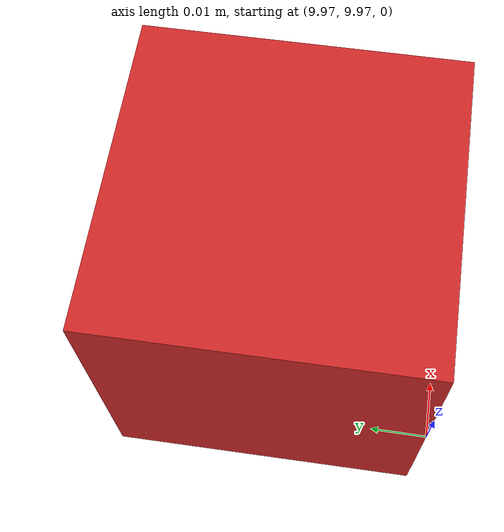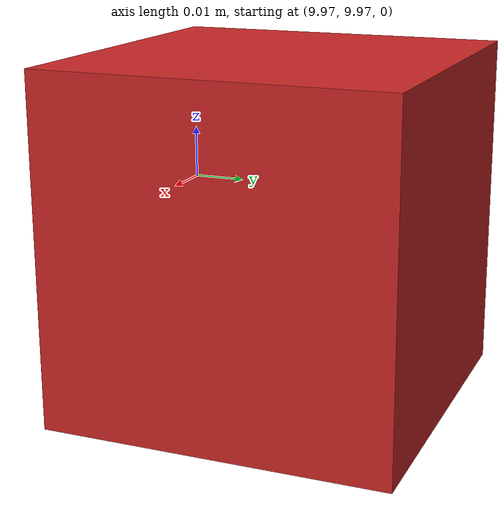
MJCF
<mujoco model="clutter_detect">
  <compiler angle="radian"/>
  <option gravity="0 0 -9.81"/>
  <visual>
    <global offwidth="256" offheight="256"/>
    <quality shadowsize="0"/>
    <headlight ambient="0.3 0.3 0.3" diffuse="0.4 0.4 0.4" specular="0 0 0"/>
  </visual>

  <worldbody>
    <light name="l0" pos="0 0 1.2" dir="0 0 -1" diffuse="0.7 0.7 0.7" specular="0.1 0.1 0.1"/>

    <geom name="table" type="plane" size="1.5 1.5 0.01" rgba="0.75 0.75 0.72 1"/>

    <!-- overhead: kept from block 1. pixel<->world is exactly affine here, which is
         what lets us verify the labels and what blocks 4-6 will use. -->
    <camera name="top" pos="0 0 0.45" xyaxes="1 0 0 0 1 0" fovy="45"/>

    <camera name="tilt" pos="0 -0.42 0.34" xyaxes="1 0 0  0 0.629 0.777" fovy="45"/>

    <body name="obj0" pos="10 10 0"><geom name="g0" type="box" size="0.03 0.03 0.03" rgba="0.8 0.15 0.15 1"/></body>
    <body name="obj1" pos="10 10 0"><geom name="g1" type="box" size="0.03 0.03 0.03" rgba="0.8 0.15 0.15 1"/></body>
    <body name="obj2" pos="10 10 0"><geom name="g2" type="box" size="0.03 0.03 0.03" rgba="0.8 0.15 0.15 1"/></body>
    <body name="obj3" pos="10 10 0"><geom name="g3" type="box" size="0.03 0.03 0.03" rgba="0.8 0.15 0.15 1"/></body>
    <body name="obj4" pos="10 10 0"><geom name="g4" type="box" size="0.03 0.03 0.03" rgba="0.8 0.15 0.15 1"/></body>
    <body name="obj5" pos="10 10 0"><geom name="g5" type="box" size="0.03 0.03 0.03" rgba="0.8 0.15 0.15 1"/></body>
  </worldbody>
</mujoco>
